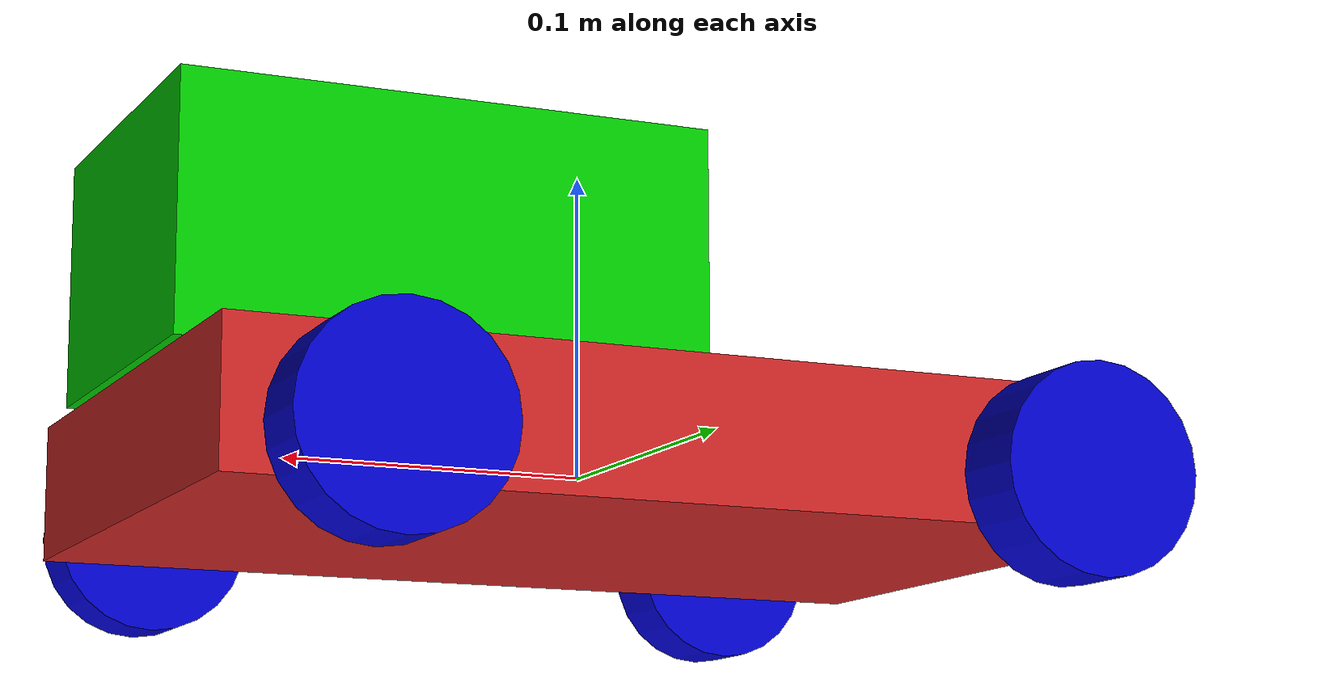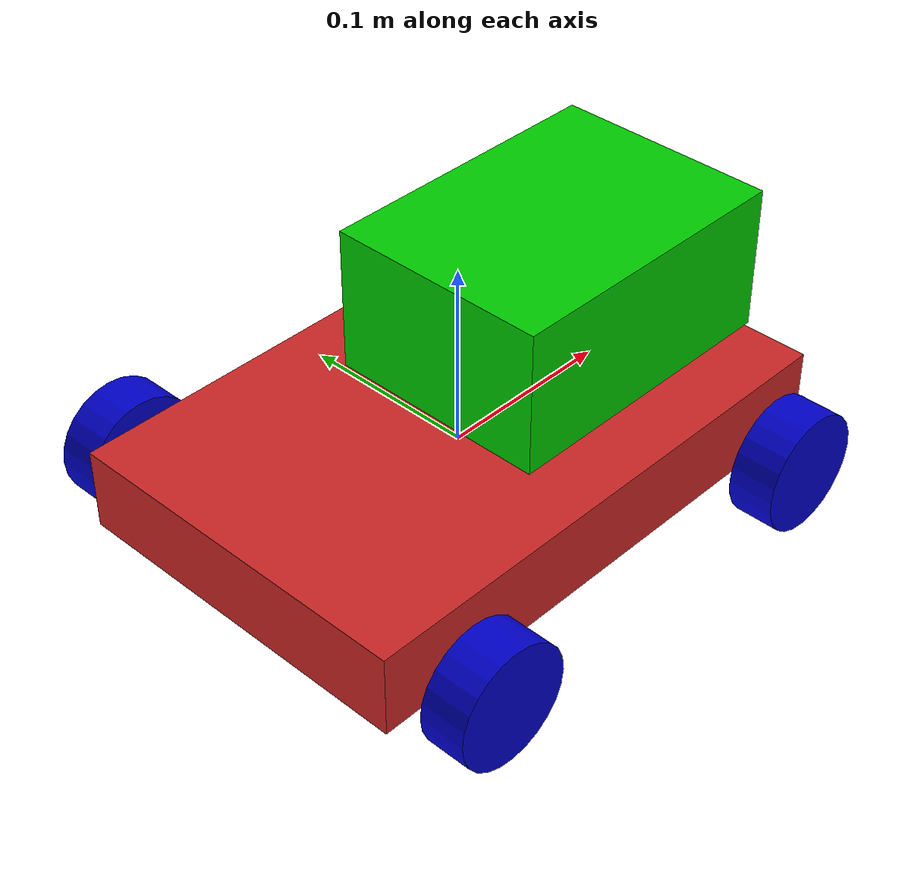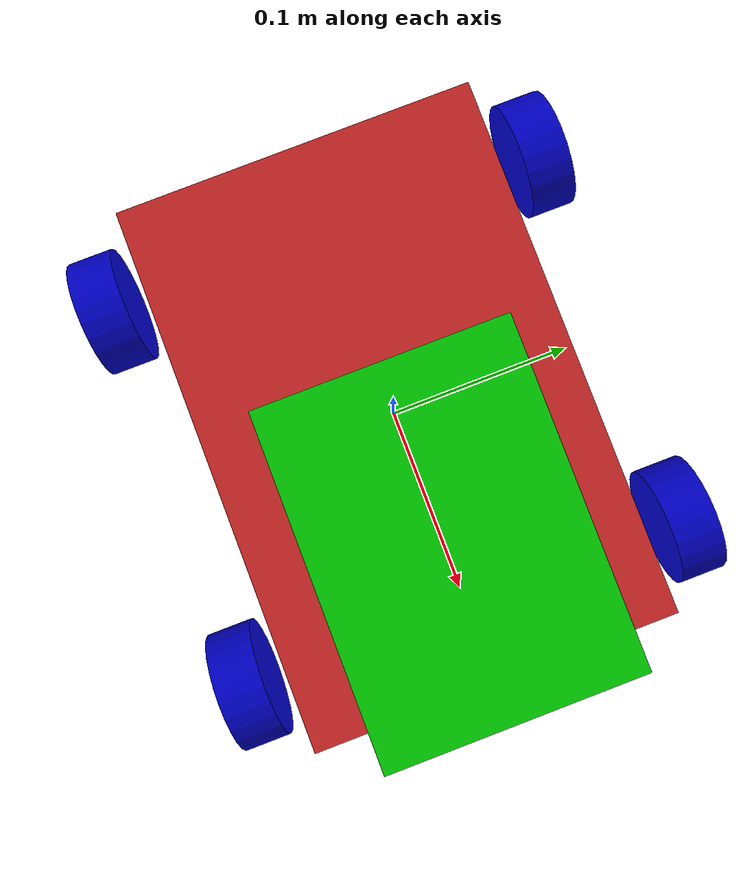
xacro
<?xml version="1.0"?>
<robot xmlns:xacro="http://www.ros.org/wiki/xacro" name="our_robot">

<!-- Base Link -->
<link name="base_link">
</link>

<xacro:property name="height" value="0.3" />
<xacro:property name="width" value="0.2" />
<xacro:property name="depth" value="0.045" />

<!--Chassis-->
<link name="chassis">
  <visual>
   <origin xyz="0 0 0" rpy="0 0 0"/>​
    <geometry>
      <box size="${height} ${width} ${depth}"/>
    </geometry>
  </visual>
  <collision>
    <geometry>
      <box size="${height} ${width} ${depth}"/>
    </geometry>
  </collision>
  <inertial>
    <mass value="1.0"/> <!-- [kg] -->
    <inertia ixx="0.014167" ixy="0.0" ixz="0.0" iyy="0.026667" iyz="0.0" izz="0.014167"/>
  </inertial>
</link>

<gazebo reference="chassis">
  <material>Gazebo/Red</material>
</gazebo>

<joint name="chassis_joint" type="fixed">
  <parent link="base_link"/>
  <child link="chassis"/>
  <origin xyz="0 0 0"/>
</joint>

<material name="blue">
    <color rgba="0 0 0.8 1"/>
</material>

<xacro:property name="wheel_height" value="0.025" />
<xacro:property name="wheel_radius" value="0.0325" />

<!-- Wheel macro-->
<xacro:macro name="wheel" params="name reflect_x reflect_y reflect_r reflect_axis">

  <!-- Wheel link -->
  <link name="${name}_wheel">
    <visual>
      <geometry>
        <cylinder length="${wheel_height}" radius="${wheel_radius}"/>
      </geometry>
      <material name="blue"/>
    </visual>
    <collision>
      <geometry>
        <cylinder length="${wheel_height}" radius="${wheel_radius}"/>
      </geometry>
    </collision>
    <inertial>
      <mass value="0.1"/>  <!-- [kg] -->
      <inertia ixx="0.00031" ixy="0.0" ixz="0.0" iyy="0.00031" iyz="0.0" izz="0.00054"/>
    </inertial>
  </link>

  <!-- Wheel joint -->
  <joint name="${name}_wheel_joint" type="continuous">
    <parent link="chassis"/>
    <child link="${name}_wheel"/>
    <origin xyz="${reflect_x*height/2.75} ${reflect_y*(width/2+0.025)} -0.01" rpy="${reflect_r*1.5707} 0 0"/>
    <axis xyz="0 0 ${reflect_axis}"/>
  </joint>

  <!-- Adding transmission to wheels -->
  <transmission name="${name}_wheel_trans">
    <type>transmission_interface/SimpleTransmission</type>
    <actuator name="${name}_wheel_motor">
      <mechanicalReduction>1</mechanicalReduction>
    </actuator>
    <joint name="${name}_wheel_joint">
      <hardwareInterface>hardware_interface/VelocityJointInterface</hardwareInterface>
    </joint>
  </transmission>

  <gazebo reference="${name}_wheel">
    <material>Gazebo/Blue</material>
  </gazebo>

</xacro:macro>

<!-- Wheels definition-->
<xacro:wheel name="front_right" reflect_x="1" reflect_y="-1" reflect_r="1" reflect_axis="-1"/>
<xacro:wheel name="front_left" reflect_x="1" reflect_y="1" reflect_r="-1" reflect_axis="1"/>
<xacro:wheel name="rear_right" reflect_x="-1" reflect_y="-1" reflect_r="1" reflect_axis="-1"/>
<xacro:wheel name="rear_left" reflect_x="-1" reflect_y="1" reflect_r="-1" reflect_axis="1"/>

<!-- Head box -->
<material name="green">
  <color rgba="0 0.8 0 1"/>
</material>

<link name="head">
  <visual>
    <geometry>
      <box size="0.17 0.125 0.08"/>
    </geometry>
    <material name="green"/>
  </visual>
</link>

<joint name="head_joint" type="fixed">
  <parent link="chassis"/>
  <child link="head"/>
  <origin xyz="0.068 0 0.0625" rpy="0 0 0"/>
</joint>

<gazebo reference="head">
  <material>Gazebo/Green</material>
</gazebo>

<!-- Link Gazebo and ROS -->
<gazebo>
  <plugin name="gazebo_ros_control" filename="libgazebo_ros_control.so">
    <robotNamespace>/</robotNamespace>
  </plugin>
</gazebo>

</robot>
